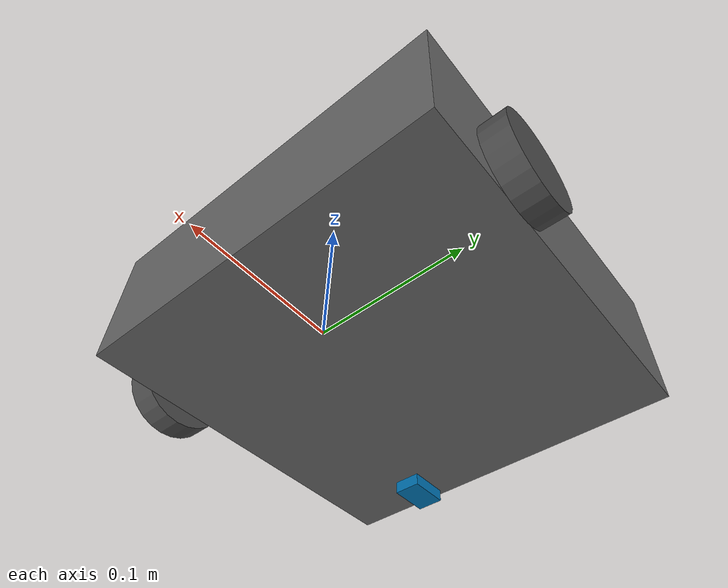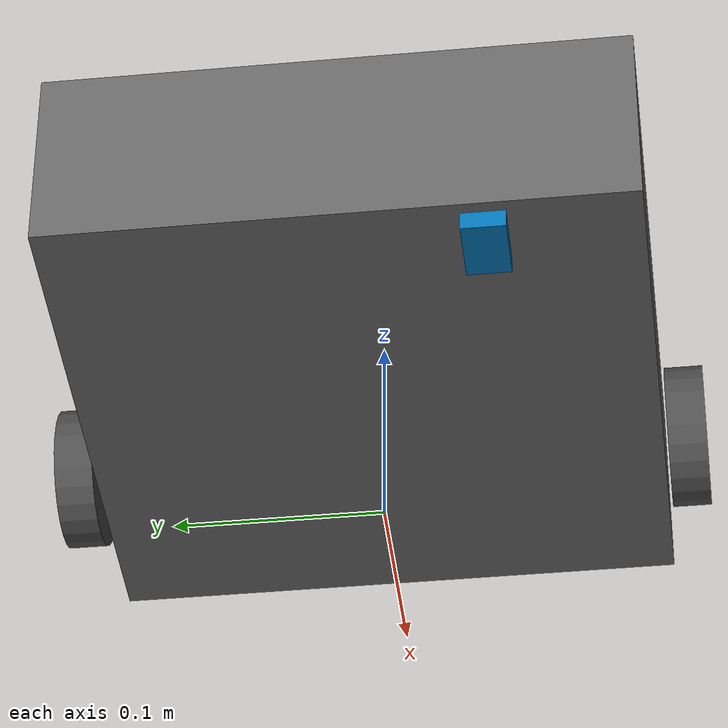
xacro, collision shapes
<?xml version="1.0" ?>
<robot name="turtlebot3_waffle_pi" xmlns:xacro="http://ros.org/wiki/xacro">
  <!-- Define the robot_namespace parameter with a default value (empty string) -->
  <xacro:arg name='robot_namespace' default=''/>

  <!-- Init colours -->
  <material name="black">
      <color rgba="0.0 0.0 0.0 1.0"/>
  </material>

  <material name="dark">
    <color rgba="0.3 0.3 0.3 1.0"/>
  </material>

  <material name="light_black">
    <color rgba="0.4 0.4 0.4 1.0"/>
  </material>

  <material name="blue">
    <color rgba="0.0 0.0 0.8 1.0"/>
  </material>

  <material name="green">
    <color rgba="0.0 0.8 0.0 1.0"/>
  </material>

  <material name="grey">
    <color rgba="0.5 0.5 0.5 1.0"/>
  </material>

  <material name="orange">
    <color rgba="1.0 0.4235 0.0392 1.0"/>
  </material>

  <material name="brown">
    <color rgba="0.8706 0.8118 0.7647 1.0"/>
  </material>

  <material name="red">
    <color rgba="0.8 0.0 0.0 1.0"/>
  </material>

  <material name="white">
    <color rgba="1.0 1.0 1.0 1.0"/>
  </material>

  <link name="$(arg robot_namespace)/base_footprint"/>

  <joint name="$(arg robot_namespace)/base_joint" type="fixed">
    <parent link="$(arg robot_namespace)/base_footprint"/>
    <child link="$(arg robot_namespace)/base_link"/>
    <origin xyz="0 0 0.010" rpy="0 0 0"/>
  </joint>

  <link name="$(arg robot_namespace)/base_link">
    <visual>
      <origin xyz="-0.064 0 0.0" rpy="0 0 0"/>
      <geometry>
        <mesh filename="package://turtlebot3_gazebo/models/turtlebot3_common/meshes/waffle_pi_base.dae" scale="0.001 0.001 0.001"/>
      </geometry>
      <material name="light_black"/>
    </visual>

    <collision>
      <origin xyz="-0.064 0 0.047" rpy="0 0 0"/>
      <geometry>
        <box size="0.266 0.266 0.094"/>
      </geometry>
    </collision>

    <inertial>
      <origin xyz="0 0 0" rpy="0 0 0"/>
      <mass value="1.3729096e+00"/>
      <inertia ixx="8.7002718e-03" ixy="-4.7576583e-05" ixz="1.1160499e-04"
               iyy="8.6195418e-03" iyz="-3.5422299e-06"
               izz="1.4612727e-02" />
    </inertial>
  </link>

  <joint name="$(arg robot_namespace)/wheel_left_joint" type="continuous">
    <parent link="$(arg robot_namespace)/base_link"/>
    <child link="$(arg robot_namespace)/wheel_left_link"/>
    <origin xyz="0.0 0.144 0.023" rpy="-1.57 0 0"/>
    <axis xyz="0 0 1"/>
  </joint>

  <link name="$(arg robot_namespace)/wheel_left_link">
    <visual>
      <origin xyz="0 0 0" rpy="1.57 0 0"/>
      <geometry>
        <mesh filename="package://turtlebot3_gazebo/models/turtlebot3_common/meshes/tire.dae" scale="0.001 0.001 0.001"/>
      </geometry>
      <material name="dark"/>
    </visual>

    <collision>
      <origin xyz="0 0 0" rpy="0 0 0"/>
      <geometry>
        <cylinder length="0.018" radius="0.033"/>
      </geometry>
    </collision>

    <inertial>
      <origin xyz="0 0 0" />
      <mass value="2.8498940e-02" />
      <inertia ixx="1.1175580e-05" ixy="-4.2369783e-11" ixz="-5.9381719e-09"
               iyy="1.1192413e-05" iyz="-1.4400107e-11"
               izz="2.0712558e-05" />
    </inertial>
  </link>

  <joint name="$(arg robot_namespace)/wheel_right_joint" type="continuous">
    <parent link="$(arg robot_namespace)/base_link"/>
    <child link="$(arg robot_namespace)/wheel_right_link"/>
    <origin xyz="0.0 -0.144 0.023" rpy="-1.57 0 0"/>
    <axis xyz="0 0 1"/>
  </joint>

  <link name="$(arg robot_namespace)/wheel_right_link">
    <visual>
      <origin xyz="0 0 0" rpy="1.57 0 0"/>
      <geometry>
        <mesh filename="package://turtlebot3_gazebo/models/turtlebot3_common/meshes/tire.dae" scale="0.001 0.001 0.001"/>
      </geometry>
      <material name="dark"/>
    </visual>

    <collision>
      <origin xyz="0 0 0" rpy="0 0 0"/>
      <geometry>
        <cylinder length="0.018" radius="0.033"/>
      </geometry>
    </collision>

    <inertial>
      <origin xyz="0 0 0" />
      <mass value="2.8498940e-02" />
      <inertia ixx="1.1175580e-05" ixy="-4.2369783e-11" ixz="-5.9381719e-09"
               iyy="1.1192413e-05" iyz="-1.4400107e-11"
               izz="2.0712558e-05" />
    </inertial>
  </link>

  <joint name="$(arg robot_namespace)/caster_back_right_joint" type="fixed">
    <parent link="$(arg robot_namespace)/base_link"/>
    <child link="$(arg robot_namespace)/caster_back_right_link"/>
    <origin xyz="-0.177 -0.064 -0.004" rpy="-1.57 0 0"/>
  </joint>

  <link name="$(arg robot_namespace)/caster_back_right_link">
    <collision>
      <origin xyz="0 0.001 0" rpy="0 0 0"/>
      <geometry>
        <box size="0.030 0.009 0.020"/>
      </geometry>
    </collision>

    <inertial>
      <origin xyz="0 0 0" />
      <mass value="0.005" />
      <inertia ixx="0.001" ixy="0.0" ixz="0.0"
               iyy="0.001" iyz="0.0"
               izz="0.001" />
    </inertial>
  </link>

  <!-- Add similar $(arg robot_namespace)/ prefix for remaining links and joints -->

</robot>
